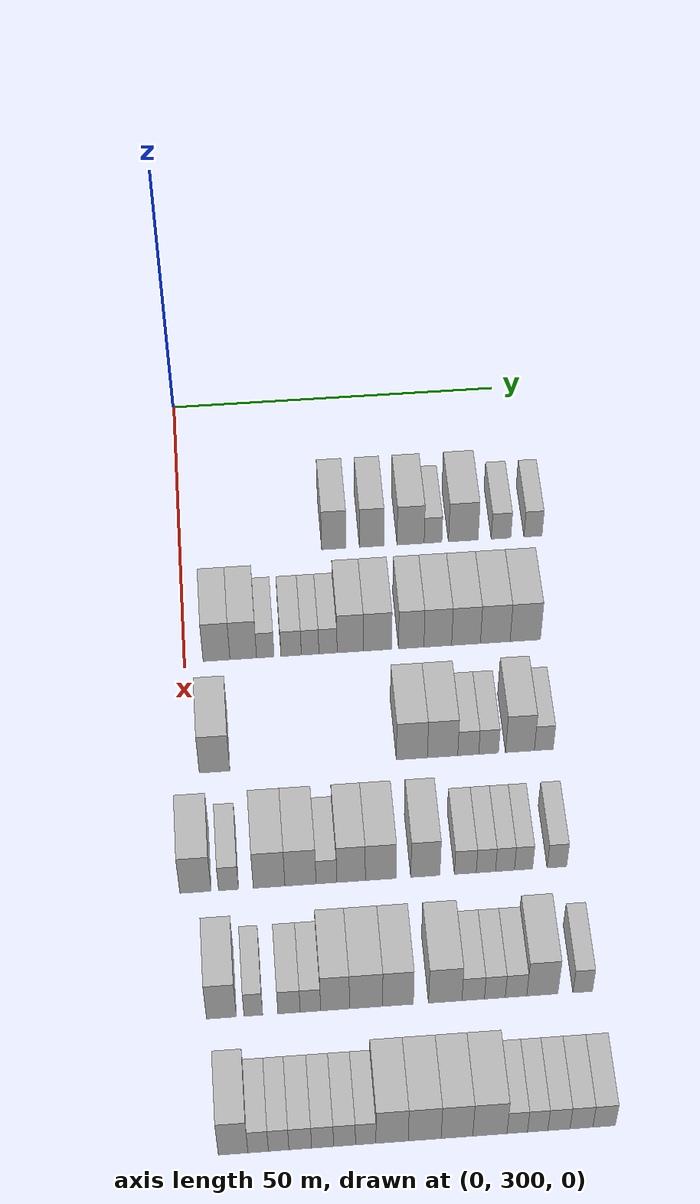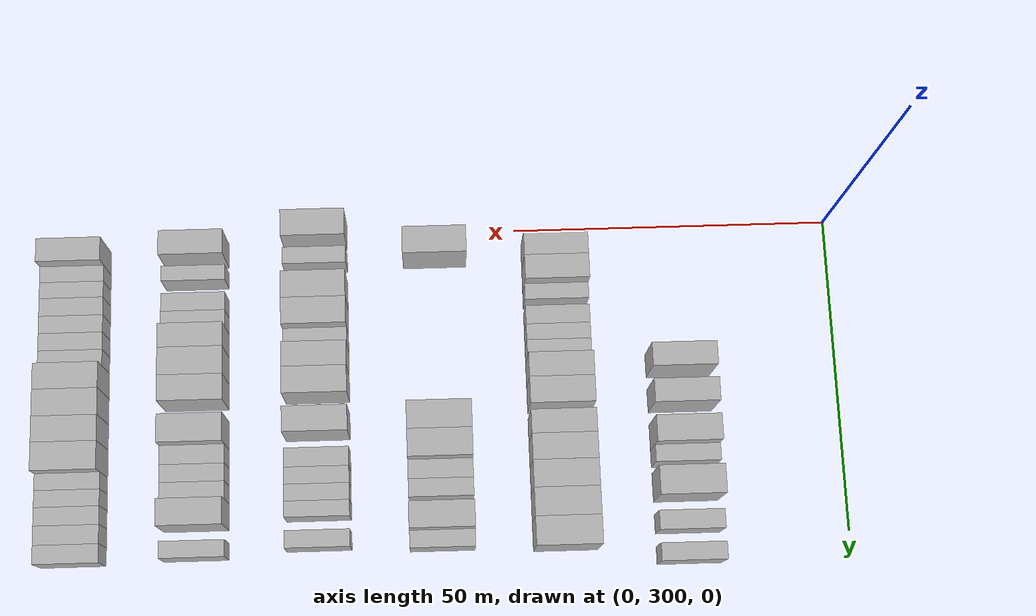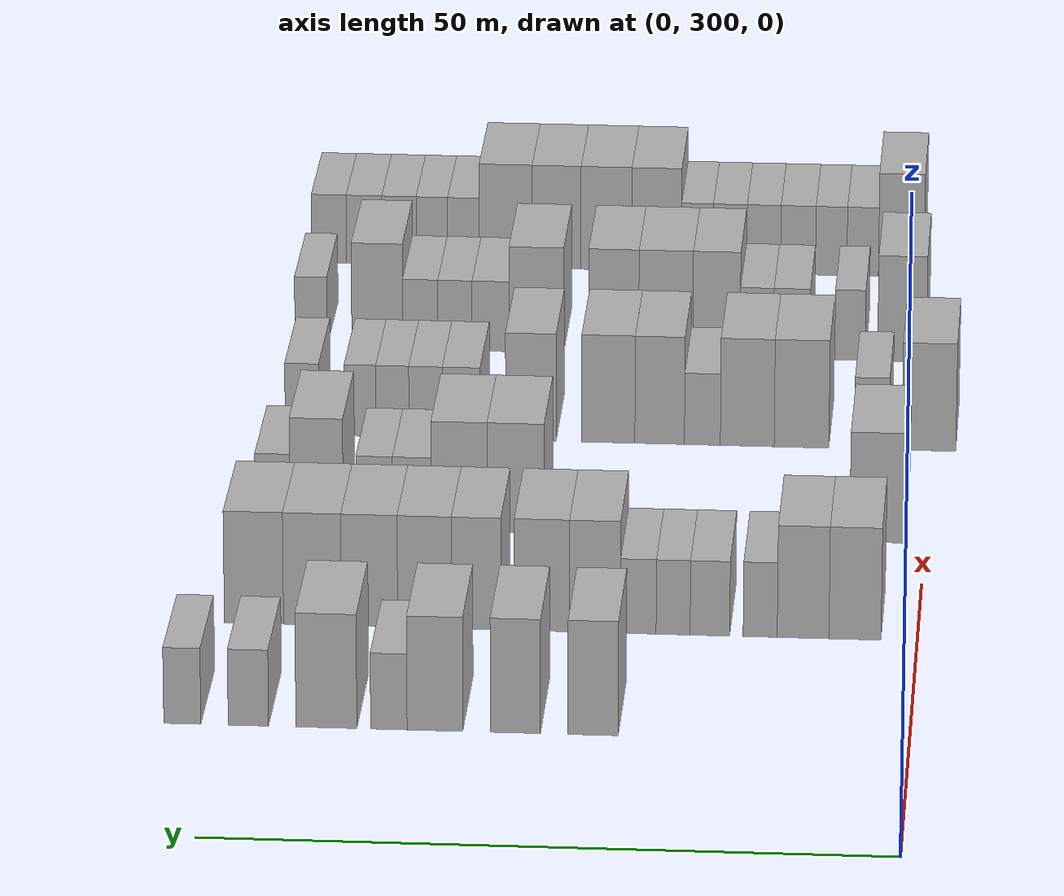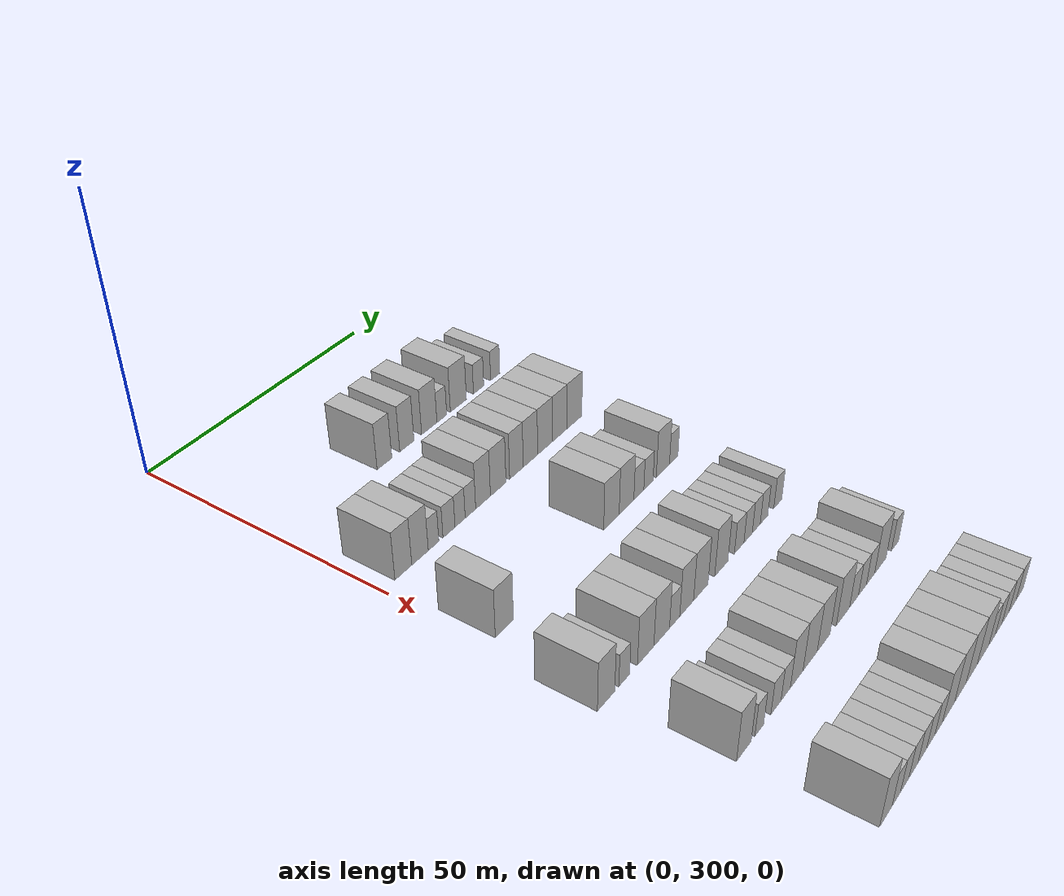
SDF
<sdf version="1.6">
 <world name="default">
  <model name="building_166">
   <static>1</static>
   <pose>25.0000 323.0089 0 0.000000 0.000000 0.000000</pose>
   <link name="link">
    <pose>0 0 4.50 0 0 0</pose>
    <collision name="collision"><geometry><box><size>10.0000 3.6612 9.0000</size></box></geometry></collision>
    <visual name="visual">
     <cast_shadows>0</cast_shadows>
     <geometry><box><size>10.0000 3.6612 9.0000</size></box></geometry>
     <material>
      <script>
       <uri>model://HANNAS_wall/materials/scripts</uri>
       <uri>model://HANNAS_wall/materials/textures</uri>
       <name>vrc/HANNAS_wall</name>
      </script>
     </material>
    </visual>
   </link>
  </model>
  <model name="building_167">
   <static>1</static>
   <pose>25.0000 328.6678 0 0.000000 0.000000 0.000000</pose>
   <link name="link">
    <pose>0 0 4.50 0 0 0</pose>
    <collision name="collision"><geometry><box><size>10.0000 3.6567 9.0000</size></box></geometry></collision>
    <visual name="visual">
     <cast_shadows>0</cast_shadows>
     <geometry><box><size>10.0000 3.6567 9.0000</size></box></geometry>
     <material>
      <script>
       <uri>model://HANNAS_wall/materials/scripts</uri>
       <uri>model://HANNAS_wall/materials/textures</uri>
       <name>vrc/HANNAS_wall</name>
      </script>
     </material>
    </visual>
   </link>
  </model>
  <model name="building_168">
   <static>1</static>
   <pose>25.0000 334.5279 0 0.000000 0.000000 0.000000</pose>
   <link name="link">
    <pose>0 0 4.50 0 0 0</pose>
    <collision name="collision"><geometry><box><size>10.0000 4.0635 9.0000</size></box></geometry></collision>
    <visual name="visual">
     <cast_shadows>0</cast_shadows>
     <geometry><box><size>10.0000 4.0635 9.0000</size></box></geometry>
     <material>
      <script>
       <uri>model://HANNAS_wall/materials/scripts</uri>
       <uri>model://HANNAS_wall/materials/textures</uri>
       <name>vrc/HANNAS_wall</name>
      </script>
     </material>
    </visual>
   </link>
  </model>
  <model name="building_169">
   <static>1</static>
   <pose>25.0000 337.8894 0 0.000000 0.000000 0.000000</pose>
   <link name="link">
    <pose>0 0 3.00 0 0 0</pose>
    <collision name="collision"><geometry><box><size>10.0000 2.6595 6.0000</size></box></geometry></collision>
    <visual name="visual">
     <cast_shadows>0</cast_shadows>
     <geometry><box><size>10.0000 2.6595 6.0000</size></box></geometry>
     <material>
      <script>
       <uri>model://HANNAS_wall/materials/scripts</uri>
       <uri>model://HANNAS_wall/materials/textures</uri>
       <name>vrc/HANNAS_wall</name>
      </script>
     </material>
    </visual>
   </link>
  </model>
  <model name="building_170">
   <static>1</static>
   <pose>25.0000 342.4454 0 0.000000 0.000000 0.000000</pose>
   <link name="link">
    <pose>0 0 4.50 0 0 0</pose>
    <collision name="collision"><geometry><box><size>10.0000 4.4525 9.0000</size></box></geometry></collision>
    <visual name="visual">
     <cast_shadows>0</cast_shadows>
     <geometry><box><size>10.0000 4.4525 9.0000</size></box></geometry>
     <material>
      <script>
       <uri>model://HANNAS_wall/materials/scripts</uri>
       <uri>model://HANNAS_wall/materials/textures</uri>
       <name>vrc/HANNAS_wall</name>
      </script>
     </material>
    </visual>
   </link>
  </model>
  <model name="building_171">
   <static>1</static>
   <pose>25.0000 348.1455 0 0.000000 0.000000 0.000000</pose>
   <link name="link">
    <pose>0 0 3.00 0 0 0</pose>
    <collision name="collision"><geometry><box><size>10.0000 2.9476 6.0000</size></box></geometry></collision>
    <visual name="visual">
     <cast_shadows>0</cast_shadows>
     <geometry><box><size>10.0000 2.9476 6.0000</size></box></geometry>
     <material>
      <script>
       <uri>model://HANNAS_wall/materials/scripts</uri>
       <uri>model://HANNAS_wall/materials/textures</uri>
       <name>vrc/HANNAS_wall</name>
      </script>
     </material>
    </visual>
   </link>
  </model>
  <model name="building_172">
   <static>1</static>
   <pose>25.0000 352.9757 0 0.000000 0.000000 0.000000</pose>
   <link name="link">
    <pose>0 0 3.00 0 0 0</pose>
    <collision name="collision"><geometry><box><size>10.0000 2.7128 6.0000</size></box></geometry></collision>
    <visual name="visual">
     <cast_shadows>0</cast_shadows>
     <geometry><box><size>10.0000 2.7128 6.0000</size></box></geometry>
     <material>
      <script>
       <uri>model://HANNAS_wall/materials/scripts</uri>
       <uri>model://HANNAS_wall/materials/textures</uri>
       <name>vrc/HANNAS_wall</name>
      </script>
     </material>
    </visual>
   </link>
  </model>
  <model name="building_335">
   <static>1</static>
   <pose>44.0000 304.6776 0 0.000000 0.000000 0.000000</pose>
   <link name="link">
    <pose>0 0 4.50 0 0 0</pose>
    <collision name="collision"><geometry><box><size>10.0000 3.8738 9.0000</size></box></geometry></collision>
    <visual name="visual">
     <cast_shadows>0</cast_shadows>
     <geometry><box><size>10.0000 3.8738 9.0000</size></box></geometry>
     <material>
      <script>
       <uri>model://HANNAS_wall/materials/scripts</uri>
       <uri>model://HANNAS_wall/materials/textures</uri>
       <name>vrc/HANNAS_wall</name>
      </script>
     </material>
    </visual>
   </link>
  </model>
  <model name="building_336">
   <static>1</static>
   <pose>44.0000 308.5405 0 0.000000 0.000000 0.000000</pose>
   <link name="link">
    <pose>0 0 4.50 0 0 0</pose>
    <collision name="collision"><geometry><box><size>10.0000 3.8520 9.0000</size></box></geometry></collision>
    <visual name="visual">
     <cast_shadows>0</cast_shadows>
     <geometry><box><size>10.0000 3.8520 9.0000</size></box></geometry>
     <material>
      <script>
       <uri>model://HANNAS_wall/materials/scripts</uri>
       <uri>model://HANNAS_wall/materials/textures</uri>
       <name>vrc/HANNAS_wall</name>
      </script>
     </material>
    </visual>
   </link>
  </model>
  <model name="building_337">
   <static>1</static>
   <pose>44.0000 311.7348 0 0.000000 0.000000 0.000000</pose>
   <link name="link">
    <pose>0 0 3.00 0 0 0</pose>
    <collision name="collision"><geometry><box><size>10.0000 2.5368 6.0000</size></box></geometry></collision>
    <visual name="visual">
     <cast_shadows>0</cast_shadows>
     <geometry><box><size>10.0000 2.5368 6.0000</size></box></geometry>
     <material>
      <script>
       <uri>model://HANNAS_wall/materials/scripts</uri>
       <uri>model://HANNAS_wall/materials/textures</uri>
       <name>vrc/HANNAS_wall</name>
      </script>
     </material>
    </visual>
   </link>
  </model>
  <model name="building_338">
   <static>1</static>
   <pose>44.0000 315.4791 0 0.000000 0.000000 0.000000</pose>
   <link name="link">
    <pose>0 0 3.00 0 0 0</pose>
    <collision name="collision"><geometry><box><size>10.0000 2.9518 6.0000</size></box></geometry></collision>
    <visual name="visual">
     <cast_shadows>0</cast_shadows>
     <geometry><box><size>10.0000 2.9518 6.0000</size></box></geometry>
     <material>
      <script>
       <uri>model://HANNAS_wall/materials/scripts</uri>
       <uri>model://HANNAS_wall/materials/textures</uri>
       <name>vrc/HANNAS_wall</name>
      </script>
     </material>
    </visual>
   </link>
  </model>
  <model name="building_339">
   <static>1</static>
   <pose>44.0000 318.2250 0 0.000000 0.000000 0.000000</pose>
   <link name="link">
    <pose>0 0 3.00 0 0 0</pose>
    <collision name="collision"><geometry><box><size>10.0000 2.5399 6.0000</size></box></geometry></collision>
    <visual name="visual">
     <cast_shadows>0</cast_shadows>
     <geometry><box><size>10.0000 2.5399 6.0000</size></box></geometry>
     <material>
      <script>
       <uri>model://HANNAS_wall/materials/scripts</uri>
       <uri>model://HANNAS_wall/materials/textures</uri>
       <name>vrc/HANNAS_wall</name>
      </script>
     </material>
    </visual>
   </link>
  </model>
  <model name="building_340">
   <static>1</static>
   <pose>44.0000 320.8242 0 0.000000 0.000000 0.000000</pose>
   <link name="link">
    <pose>0 0 3.00 0 0 0</pose>
    <collision name="collision"><geometry><box><size>10.0000 2.6586 6.0000</size></box></geometry></collision>
    <visual name="visual">
     <cast_shadows>0</cast_shadows>
     <geometry><box><size>10.0000 2.6586 6.0000</size></box></geometry>
     <material>
      <script>
       <uri>model://HANNAS_wall/materials/scripts</uri>
       <uri>model://HANNAS_wall/materials/textures</uri>
       <name>vrc/HANNAS_wall</name>
      </script>
     </material>
    </visual>
   </link>
  </model>
  <model name="building_341">
   <static>1</static>
   <pose>44.0000 324.0611 0 0.000000 0.000000 0.000000</pose>
   <link name="link">
    <pose>0 0 4.50 0 0 0</pose>
    <collision name="collision"><geometry><box><size>10.0000 3.8152 9.0000</size></box></geometry></collision>
    <visual name="visual">
     <cast_shadows>0</cast_shadows>
     <geometry><box><size>10.0000 3.8152 9.0000</size></box></geometry>
     <material>
      <script>
       <uri>model://HANNAS_wall/materials/scripts</uri>
       <uri>model://HANNAS_wall/materials/textures</uri>
       <name>vrc/HANNAS_wall</name>
      </script>
     </material>
    </visual>
   </link>
  </model>
  <model name="building_342">
   <static>1</static>
   <pose>44.0000 328.0256 0 0.000000 0.000000 0.000000</pose>
   <link name="link">
    <pose>0 0 4.50 0 0 0</pose>
    <collision name="collision"><geometry><box><size>10.0000 4.1137 9.0000</size></box></geometry></collision>
    <visual name="visual">
     <cast_shadows>0</cast_shadows>
     <geometry><box><size>10.0000 4.1137 9.0000</size></box></geometry>
     <material>
      <script>
       <uri>model://HANNAS_wall/materials/scripts</uri>
       <uri>model://HANNAS_wall/materials/textures</uri>
       <name>vrc/HANNAS_wall</name>
      </script>
     </material>
    </visual>
   </link>
  </model>
  <model name="building_343">
   <static>1</static>
   <pose>44.0000 332.9286 0 0.000000 0.000000 0.000000</pose>
   <link name="link">
    <pose>0 0 4.50 0 0 0</pose>
    <collision name="collision"><geometry><box><size>10.0000 3.6924 9.0000</size></box></geometry></collision>
    <visual name="visual">
     <cast_shadows>0</cast_shadows>
     <geometry><box><size>10.0000 3.6924 9.0000</size></box></geometry>
     <material>
      <script>
       <uri>model://HANNAS_wall/materials/scripts</uri>
       <uri>model://HANNAS_wall/materials/textures</uri>
       <name>vrc/HANNAS_wall</name>
      </script>
     </material>
    </visual>
   </link>
  </model>
  <model name="building_344">
   <static>1</static>
   <pose>44.0000 336.7940 0 0.000000 0.000000 0.000000</pose>
   <link name="link">
    <pose>0 0 4.50 0 0 0</pose>
    <collision name="collision"><geometry><box><size>10.0000 4.0385 9.0000</size></box></geometry></collision>
    <visual name="visual">
     <cast_shadows>0</cast_shadows>
     <geometry><box><size>10.0000 4.0385 9.0000</size></box></geometry>
     <material>
      <script>
       <uri>model://HANNAS_wall/materials/scripts</uri>
       <uri>model://HANNAS_wall/materials/textures</uri>
       <name>vrc/HANNAS_wall</name>
      </script>
     </material>
    </visual>
   </link>
  </model>
  <model name="building_345">
   <static>1</static>
   <pose>44.0000 340.9139 0 0.000000 0.000000 0.000000</pose>
   <link name="link">
    <pose>0 0 4.50 0 0 0</pose>
    <collision name="collision"><geometry><box><size>10.0000 4.2012 9.0000</size></box></geometry></collision>
    <visual name="visual">
     <cast_shadows>0</cast_shadows>
     <geometry><box><size>10.0000 4.2012 9.0000</size></box></geometry>
     <material>
      <script>
       <uri>model://HANNAS_wall/materials/scripts</uri>
       <uri>model://HANNAS_wall/materials/textures</uri>
       <name>vrc/HANNAS_wall</name>
      </script>
     </material>
    </visual>
   </link>
  </model>
  <model name="building_346">
   <static>1</static>
   <pose>44.0000 345.1844 0 0.000000 0.000000 0.000000</pose>
   <link name="link">
    <pose>0 0 4.50 0 0 0</pose>
    <collision name="collision"><geometry><box><size>10.0000 4.3399 9.0000</size></box></geometry></collision>
    <visual name="visual">
     <cast_shadows>0</cast_shadows>
     <geometry><box><size>10.0000 4.3399 9.0000</size></box></geometry>
     <material>
      <script>
       <uri>model://HANNAS_wall/materials/scripts</uri>
       <uri>model://HANNAS_wall/materials/textures</uri>
       <name>vrc/HANNAS_wall</name>
      </script>
     </material>
    </visual>
   </link>
  </model>
  <model name="building_347">
   <static>1</static>
   <pose>44.0000 349.5711 0 0.000000 0.000000 0.000000</pose>
   <link name="link">
    <pose>0 0 4.50 0 0 0</pose>
    <collision name="collision"><geometry><box><size>10.0000 4.4335 9.0000</size></box></geometry></collision>
    <visual name="visual">
     <cast_shadows>0</cast_shadows>
     <geometry><box><size>10.0000 4.4335 9.0000</size></box></geometry>
     <material>
      <script>
       <uri>model://HANNAS_wall/materials/scripts</uri>
       <uri>model://HANNAS_wall/materials/textures</uri>
       <name>vrc/HANNAS_wall</name>
      </script>
     </material>
    </visual>
   </link>
  </model>
  <model name="building_506">
   <static>1</static>
   <pose>63.0000 303.6293 0 0.000000 0.000000 0.000000</pose>
   <link name="link">
    <pose>0 0 4.50 0 0 0</pose>
    <collision name="collision"><geometry><box><size>10.0000 4.2753 9.0000</size></box></geometry></collision>
    <visual name="visual">
     <cast_shadows>0</cast_shadows>
     <geometry><box><size>10.0000 4.2753 9.0000</size></box></geometry>
     <material>
      <script>
       <uri>model://HANNAS_wall/materials/scripts</uri>
       <uri>model://HANNAS_wall/materials/textures</uri>
       <name>vrc/HANNAS_wall</name>
      </script>
     </material>
    </visual>
   </link>
  </model>
  <model name="building_507">
   <static>1</static>
   <pose>63.0000 331.3214 0 0.000000 0.000000 0.000000</pose>
   <link name="link">
    <pose>0 0 4.50 0 0 0</pose>
    <collision name="collision"><geometry><box><size>10.0000 4.3696 9.0000</size></box></geometry></collision>
    <visual name="visual">
     <cast_shadows>0</cast_shadows>
     <geometry><box><size>10.0000 4.3696 9.0000</size></box></geometry>
     <material>
      <script>
       <uri>model://HANNAS_wall/materials/scripts</uri>
       <uri>model://HANNAS_wall/materials/textures</uri>
       <name>vrc/HANNAS_wall</name>
      </script>
     </material>
    </visual>
   </link>
  </model>
  <model name="building_508">
   <static>1</static>
   <pose>63.0000 335.6456 0 0.000000 0.000000 0.000000</pose>
   <link name="link">
    <pose>0 0 4.50 0 0 0</pose>
    <collision name="collision"><geometry><box><size>10.0000 4.2788 9.0000</size></box></geometry></collision>
    <visual name="visual">
     <cast_shadows>0</cast_shadows>
     <geometry><box><size>10.0000 4.2788 9.0000</size></box></geometry>
     <material>
      <script>
       <uri>model://HANNAS_wall/materials/scripts</uri>
       <uri>model://HANNAS_wall/materials/textures</uri>
       <name>vrc/HANNAS_wall</name>
      </script>
     </material>
    </visual>
   </link>
  </model>
  <model name="building_509">
   <static>1</static>
   <pose>63.0000 339.2662 0 0.000000 0.000000 0.000000</pose>
   <link name="link">
    <pose>0 0 3.00 0 0 0</pose>
    <collision name="collision"><geometry><box><size>10.0000 2.9624 6.0000</size></box></geometry></collision>
    <visual name="visual">
     <cast_shadows>0</cast_shadows>
     <geometry><box><size>10.0000 2.9624 6.0000</size></box></geometry>
     <material>
      <script>
       <uri>model://HANNAS_wall/materials/scripts</uri>
       <uri>model://HANNAS_wall/materials/textures</uri>
       <name>vrc/HANNAS_wall</name>
      </script>
     </material>
    </visual>
   </link>
  </model>
  <model name="building_510">
   <static>1</static>
   <pose>63.0000 342.1454 0 0.000000 0.000000 0.000000</pose>
   <link name="link">
    <pose>0 0 3.00 0 0 0</pose>
    <collision name="collision"><geometry><box><size>10.0000 2.7959 6.0000</size></box></geometry></collision>
    <visual name="visual">
     <cast_shadows>0</cast_shadows>
     <geometry><box><size>10.0000 2.7959 6.0000</size></box></geometry>
     <material>
      <script>
       <uri>model://HANNAS_wall/materials/scripts</uri>
       <uri>model://HANNAS_wall/materials/textures</uri>
       <name>vrc/HANNAS_wall</name>
      </script>
     </material>
    </visual>
   </link>
  </model>
  <model name="building_511">
   <static>1</static>
   <pose>63.0000 346.5852 0 0.000000 0.000000 0.000000</pose>
   <link name="link">
    <pose>0 0 4.50 0 0 0</pose>
    <collision name="collision"><geometry><box><size>10.0000 4.0839 9.0000</size></box></geometry></collision>
    <visual name="visual">
     <cast_shadows>0</cast_shadows>
     <geometry><box><size>10.0000 4.0839 9.0000</size></box></geometry>
     <material>
      <script>
       <uri>model://HANNAS_wall/materials/scripts</uri>
       <uri>model://HANNAS_wall/materials/textures</uri>
       <name>vrc/HANNAS_wall</name>
      </script>
     </material>
    </visual>
   </link>
  </model>
  <model name="building_512">
   <static>1</static>
   <pose>63.0000 349.9606 0 0.000000 0.000000 0.000000</pose>
   <link name="link">
    <pose>0 0 3.00 0 0 0</pose>
    <collision name="collision"><geometry><box><size>10.0000 2.6670 6.0000</size></box></geometry></collision>
    <visual name="visual">
     <cast_shadows>0</cast_shadows>
     <geometry><box><size>10.0000 2.6670 6.0000</size></box></geometry>
     <material>
      <script>
       <uri>model://HANNAS_wall/materials/scripts</uri>
       <uri>model://HANNAS_wall/materials/textures</uri>
       <name>vrc/HANNAS_wall</name>
      </script>
     </material>
    </visual>
   </link>
  </model>
  <model name="building_675">
   <static>1</static>
   <pose>82.0000 300.2827 0 0.000000 0.000000 0.000000</pose>
   <link name="link">
    <pose>0 0 4.50 0 0 0</pose>
    <collision name="collision"><geometry><box><size>10.0000 4.2260 9.0000</size></box></geometry></collision>
    <visual name="visual">
     <cast_shadows>0</cast_shadows>
     <geometry><box><size>10.0000 4.2260 9.0000</size></box></geometry>
     <material>
      <script>
       <uri>model://HANNAS_wall/materials/scripts</uri>
       <uri>model://HANNAS_wall/materials/textures</uri>
       <name>vrc/HANNAS_wall</name>
      </script>
     </material>
    </visual>
   </link>
  </model>
  <model name="building_676">
   <static>1</static>
   <pose>82.0000 304.7451 0 0.000000 0.000000 0.000000</pose>
   <link name="link">
    <pose>0 0 3.00 0 0 0</pose>
    <collision name="collision"><geometry><box><size>10.0000 2.6988 6.0000</size></box></geometry></collision>
    <visual name="visual">
     <cast_shadows>0</cast_shadows>
     <geometry><box><size>10.0000 2.6988 6.0000</size></box></geometry>
     <material>
      <script>
       <uri>model://HANNAS_wall/materials/scripts</uri>
       <uri>model://HANNAS_wall/materials/textures</uri>
       <name>vrc/HANNAS_wall</name>
      </script>
     </material>
    </visual>
   </link>
  </model>
  <model name="building_677">
   <static>1</static>
   <pose>82.0000 310.2359 0 0.000000 0.000000 0.000000</pose>
   <link name="link">
    <pose>0 0 4.50 0 0 0</pose>
    <collision name="collision"><geometry><box><size>10.0000 4.2827 9.0000</size></box></geometry></collision>
    <visual name="visual">
     <cast_shadows>0</cast_shadows>
     <geometry><box><size>10.0000 4.2827 9.0000</size></box></geometry>
     <material>
      <script>
       <uri>model://HANNAS_wall/materials/scripts</uri>
       <uri>model://HANNAS_wall/materials/textures</uri>
       <name>vrc/HANNAS_wall</name>
      </script>
     </material>
    </visual>
   </link>
  </model>
  <model name="building_678">
   <static>1</static>
   <pose>82.0000 314.4845 0 0.000000 0.000000 0.000000</pose>
   <link name="link">
    <pose>0 0 4.50 0 0 0</pose>
    <collision name="collision"><geometry><box><size>10.0000 4.2144 9.0000</size></box></geometry></collision>
    <visual name="visual">
     <cast_shadows>0</cast_shadows>
     <geometry><box><size>10.0000 4.2144 9.0000</size></box></geometry>
     <material>
      <script>
       <uri>model://HANNAS_wall/materials/scripts</uri>
       <uri>model://HANNAS_wall/materials/textures</uri>
       <name>vrc/HANNAS_wall</name>
      </script>
     </material>
    </visual>
   </link>
  </model>
  <model name="building_679">
   <static>1</static>
   <pose>82.0000 317.9982 0 0.000000 0.000000 0.000000</pose>
   <link name="link">
    <pose>0 0 3.00 0 0 0</pose>
    <collision name="collision"><geometry><box><size>10.0000 2.8130 6.0000</size></box></geometry></collision>
    <visual name="visual">
     <cast_shadows>0</cast_shadows>
     <geometry><box><size>10.0000 2.8130 6.0000</size></box></geometry>
     <material>
      <script>
       <uri>model://HANNAS_wall/materials/scripts</uri>
       <uri>model://HANNAS_wall/materials/textures</uri>
       <name>vrc/HANNAS_wall</name>
      </script>
     </material>
    </visual>
   </link>
  </model>
  <model name="building_680">
   <static>1</static>
   <pose>82.0000 321.3482 0 0.000000 0.000000 0.000000</pose>
   <link name="link">
    <pose>0 0 4.50 0 0 0</pose>
    <collision name="collision"><geometry><box><size>10.0000 3.8871 9.0000</size></box></geometry></collision>
    <visual name="visual">
     <cast_shadows>0</cast_shadows>
     <geometry><box><size>10.0000 3.8871 9.0000</size></box></geometry>
     <material>
      <script>
       <uri>model://HANNAS_wall/materials/scripts</uri>
       <uri>model://HANNAS_wall/materials/textures</uri>
       <name>vrc/HANNAS_wall</name>
      </script>
     </material>
    </visual>
   </link>
  </model>
  <model name="building_681">
   <static>1</static>
   <pose>82.0000 325.3834 0 0.000000 0.000000 0.000000</pose>
   <link name="link">
    <pose>0 0 4.50 0 0 0</pose>
    <collision name="collision"><geometry><box><size>10.0000 4.1832 9.0000</size></box></geometry></collision>
    <visual name="visual">
     <cast_shadows>0</cast_shadows>
     <geometry><box><size>10.0000 4.1832 9.0000</size></box></geometry>
     <material>
      <script>
       <uri>model://HANNAS_wall/materials/scripts</uri>
       <uri>model://HANNAS_wall/materials/textures</uri>
       <name>vrc/HANNAS_wall</name>
      </script>
     </material>
    </visual>
   </link>
  </model>
  <model name="building_682">
   <static>1</static>
   <pose>82.0000 331.4577 0 0.000000 0.000000 0.000000</pose>
   <link name="link">
    <pose>0 0 4.50 0 0 0</pose>
    <collision name="collision"><geometry><box><size>10.0000 3.9654 9.0000</size></box></geometry></collision>
    <visual name="visual">
     <cast_shadows>0</cast_shadows>
     <geometry><box><size>10.0000 3.9654 9.0000</size></box></geometry>
     <material>
      <script>
       <uri>model://HANNAS_wall/materials/scripts</uri>
       <uri>model://HANNAS_wall/materials/textures</uri>
       <name>vrc/HANNAS_wall</name>
      </script>
     </material>
    </visual>
   </link>
  </model>
  <model name="building_683">
   <static>1</static>
   <pose>82.0000 336.9232 0 0.000000 0.000000 0.000000</pose>
   <link name="link">
    <pose>0 0 3.00 0 0 0</pose>
    <collision name="collision"><geometry><box><size>10.0000 2.9657 6.0000</size></box></geometry></collision>
    <visual name="visual">
     <cast_shadows>0</cast_shadows>
     <geometry><box><size>10.0000 2.9657 6.0000</size></box></geometry>
     <material>
      <script>
       <uri>model://HANNAS_wall/materials/scripts</uri>
       <uri>model://HANNAS_wall/materials/textures</uri>
       <name>vrc/HANNAS_wall</name>
      </script>
     </material>
    </visual>
   </link>
  </model>
  <model name="building_684">
   <static>1</static>
   <pose>82.0000 339.7233 0 0.000000 0.000000 0.000000</pose>
   <link name="link">
    <pose>0 0 3.00 0 0 0</pose>
    <collision name="collision"><geometry><box><size>10.0000 2.6345 6.0000</size></box></geometry></collision>
    <visual name="visual">
     <cast_shadows>0</cast_shadows>
     <geometry><box><size>10.0000 2.6345 6.0000</size></box></geometry>
     <material>
      <script>
       <uri>model://HANNAS_wall/materials/scripts</uri>
       <uri>model://HANNAS_wall/materials/textures</uri>
       <name>vrc/HANNAS_wall</name>
      </script>
     </material>
    </visual>
   </link>
  </model>
  <model name="building_685">
   <static>1</static>
   <pose>82.0000 342.3336 0 0.000000 0.000000 0.000000</pose>
   <link name="link">
    <pose>0 0 3.00 0 0 0</pose>
    <collision name="collision"><geometry><box><size>10.0000 2.5863 6.0000</size></box></geometry></collision>
    <visual name="visual">
     <cast_shadows>0</cast_shadows>
     <geometry><box><size>10.0000 2.5863 6.0000</size></box></geometry>
     <material>
      <script>
       <uri>model://HANNAS_wall/materials/scripts</uri>
       <uri>model://HANNAS_wall/materials/textures</uri>
       <name>vrc/HANNAS_wall</name>
      </script>
     </material>
    </visual>
   </link>
  </model>
  <model name="building_686">
   <static>1</static>
   <pose>82.0000 344.8656 0 0.000000 0.000000 0.000000</pose>
   <link name="link">
    <pose>0 0 3.00 0 0 0</pose>
    <collision name="collision"><geometry><box><size>10.0000 2.4777 6.0000</size></box></geometry></collision>
    <visual name="visual">
     <cast_shadows>0</cast_shadows>
     <geometry><box><size>10.0000 2.4777 6.0000</size></box></geometry>
     <material>
      <script>
       <uri>model://HANNAS_wall/materials/scripts</uri>
       <uri>model://HANNAS_wall/materials/textures</uri>
       <name>vrc/HANNAS_wall</name>
      </script>
     </material>
    </visual>
   </link>
  </model>
  <model name="building_687">
   <static>1</static>
   <pose>82.0000 349.4400 0 0.000000 0.000000 0.000000</pose>
   <link name="link">
    <pose>0 0 3.00 0 0 0</pose>
    <collision name="collision"><geometry><box><size>10.0000 2.6711 6.0000</size></box></geometry></collision>
    <visual name="visual">
     <cast_shadows>0</cast_shadows>
     <geometry><box><size>10.0000 2.6711 6.0000</size></box></geometry>
     <material>
      <script>
       <uri>model://HANNAS_wall/materials/scripts</uri>
       <uri>model://HANNAS_wall/materials/textures</uri>
       <name>vrc/HANNAS_wall</name>
      </script>
     </material>
    </visual>
   </link>
  </model>
  <model name="building_856">
   <static>1</static>
   <pose>101.0000 302.9865 0 0.000000 0.000000 0.000000</pose>
   <link name="link">
    <pose>0 0 4.50 0 0 0</pose>
    <collision name="collision"><geometry><box><size>10.0000 3.8971 9.0000</size></box></geometry></collision>
    <visual name="visual">
     <cast_shadows>0</cast_shadows>
     <geometry><box><size>10.0000 3.8971 9.0000</size></box></geometry>
     <material>
      <script>
       <uri>model://HANNAS_wall/materials/scripts</uri>
       <uri>model://HANNAS_wall/materials/textures</uri>
       <name>vrc/HANNAS_wall</name>
      </script>
     </material>
    </visual>
   </link>
  </model>
  <model name="building_857">
   <static>1</static>
   <pose>101.0000 307.1493 0 0.000000 0.000000 0.000000</pose>
   <link name="link">
    <pose>0 0 3.00 0 0 0</pose>
    <collision name="collision"><geometry><box><size>10.0000 2.4286 6.0000</size></box></geometry></collision>
    <visual name="visual">
     <cast_shadows>0</cast_shadows>
     <geometry><box><size>10.0000 2.4286 6.0000</size></box></geometry>
     <material>
      <script>
       <uri>model://HANNAS_wall/materials/scripts</uri>
       <uri>model://HANNAS_wall/materials/textures</uri>
       <name>vrc/HANNAS_wall</name>
      </script>
     </material>
    </visual>
   </link>
  </model>
  <model name="building_858">
   <static>1</static>
   <pose>101.0000 311.8184 0 0.000000 0.000000 0.000000</pose>
   <link name="link">
    <pose>0 0 3.00 0 0 0</pose>
    <collision name="collision"><geometry><box><size>10.0000 2.9095 6.0000</size></box></geometry></collision>
    <visual name="visual">
     <cast_shadows>0</cast_shadows>
     <geometry><box><size>10.0000 2.9095 6.0000</size></box></geometry>
     <material>
      <script>
       <uri>model://HANNAS_wall/materials/scripts</uri>
       <uri>model://HANNAS_wall/materials/textures</uri>
       <name>vrc/HANNAS_wall</name>
      </script>
     </material>
    </visual>
   </link>
  </model>
  <model name="building_859">
   <static>1</static>
   <pose>101.0000 314.6146 0 0.000000 0.000000 0.000000</pose>
   <link name="link">
    <pose>0 0 3.00 0 0 0</pose>
    <collision name="collision"><geometry><box><size>10.0000 2.6829 6.0000</size></box></geometry></collision>
    <visual name="visual">
     <cast_shadows>0</cast_shadows>
     <geometry><box><size>10.0000 2.6829 6.0000</size></box></geometry>
     <material>
      <script>
       <uri>model://HANNAS_wall/materials/scripts</uri>
       <uri>model://HANNAS_wall/materials/textures</uri>
       <name>vrc/HANNAS_wall</name>
      </script>
     </material>
    </visual>
   </link>
  </model>
  <model name="building_860">
   <static>1</static>
   <pose>101.0000 317.8494 0 0.000000 0.000000 0.000000</pose>
   <link name="link">
    <pose>0 0 4.50 0 0 0</pose>
    <collision name="collision"><geometry><box><size>10.0000 3.7868 9.0000</size></box></geometry></collision>
    <visual name="visual">
     <cast_shadows>0</cast_shadows>
     <geometry><box><size>10.0000 3.7868 9.0000</size></box></geometry>
     <material>
      <script>
       <uri>model://HANNAS_wall/materials/scripts</uri>
       <uri>model://HANNAS_wall/materials/textures</uri>
       <name>vrc/HANNAS_wall</name>
      </script>
     </material>
    </visual>
   </link>
  </model>
  <model name="building_861">
   <static>1</static>
   <pose>101.0000 321.9171 0 0.000000 0.000000 0.000000</pose>
   <link name="link">
    <pose>0 0 4.50 0 0 0</pose>
    <collision name="collision"><geometry><box><size>10.0000 4.3487 9.0000</size></box></geometry></collision>
    <visual name="visual">
     <cast_shadows>0</cast_shadows>
     <geometry><box><size>10.0000 4.3487 9.0000</size></box></geometry>
     <material>
      <script>
       <uri>model://HANNAS_wall/materials/scripts</uri>
       <uri>model://HANNAS_wall/materials/textures</uri>
       <name>vrc/HANNAS_wall</name>
      </script>
     </material>
    </visual>
   </link>
  </model>
  <model name="building_862">
   <static>1</static>
   <pose>101.0000 326.1069 0 0.000000 0.000000 0.000000</pose>
   <link name="link">
    <pose>0 0 4.50 0 0 0</pose>
    <collision name="collision"><geometry><box><size>10.0000 4.0308 9.0000</size></box></geometry></collision>
    <visual name="visual">
     <cast_shadows>0</cast_shadows>
     <geometry><box><size>10.0000 4.0308 9.0000</size></box></geometry>
     <material>
      <script>
       <uri>model://HANNAS_wall/materials/scripts</uri>
       <uri>model://HANNAS_wall/materials/textures</uri>
       <name>vrc/HANNAS_wall</name>
      </script>
     </material>
    </visual>
   </link>
  </model>
  <model name="building_863">
   <static>1</static>
   <pose>101.0000 332.3214 0 0.000000 0.000000 0.000000</pose>
   <link name="link">
    <pose>0 0 4.50 0 0 0</pose>
    <collision name="collision"><geometry><box><size>10.0000 4.3982 9.0000</size></box></geometry></collision>
    <visual name="visual">
     <cast_shadows>0</cast_shadows>
     <geometry><box><size>10.0000 4.3982 9.0000</size></box></geometry>
     <material>
      <script>
       <uri>model://HANNAS_wall/materials/scripts</uri>
       <uri>model://HANNAS_wall/materials/textures</uri>
       <name>vrc/HANNAS_wall</name>
      </script>
     </material>
    </visual>
   </link>
  </model>
  <model name="building_864">
   <static>1</static>
   <pose>101.0000 336.0028 0 0.000000 0.000000 0.000000</pose>
   <link name="link">
    <pose>0 0 3.00 0 0 0</pose>
    <collision name="collision"><geometry><box><size>10.0000 2.9645 6.0000</size></box></geometry></collision>
    <visual name="visual">
     <cast_shadows>0</cast_shadows>
     <geometry><box><size>10.0000 2.9645 6.0000</size></box></geometry>
     <material>
      <script>
       <uri>model://HANNAS_wall/materials/scripts</uri>
       <uri>model://HANNAS_wall/materials/textures</uri>
       <name>vrc/HANNAS_wall</name>
      </script>
     </material>
    </visual>
   </link>
  </model>
  <model name="building_865">
   <static>1</static>
   <pose>101.0000 338.8601 0 0.000000 0.000000 0.000000</pose>
   <link name="link">
    <pose>0 0 3.00 0 0 0</pose>
    <collision name="collision"><geometry><box><size>10.0000 2.7500 6.0000</size></box></geometry></collision>
    <visual name="visual">
     <cast_shadows>0</cast_shadows>
     <geometry><box><size>10.0000 2.7500 6.0000</size></box></geometry>
     <material>
      <script>
       <uri>model://HANNAS_wall/materials/scripts</uri>
       <uri>model://HANNAS_wall/materials/textures</uri>
       <name>vrc/HANNAS_wall</name>
      </script>
     </material>
    </visual>
   </link>
  </model>
  <model name="building_866">
   <static>1</static>
   <pose>101.0000 341.6535 0 0.000000 0.000000 0.000000</pose>
   <link name="link">
    <pose>0 0 3.00 0 0 0</pose>
    <collision name="collision"><geometry><box><size>10.0000 2.8369 6.0000</size></box></geometry></collision>
    <visual name="visual">
     <cast_shadows>0</cast_shadows>
     <geometry><box><size>10.0000 2.8369 6.0000</size></box></geometry>
     <material>
      <script>
       <uri>model://HANNAS_wall/materials/scripts</uri>
       <uri>model://HANNAS_wall/materials/textures</uri>
       <name>vrc/HANNAS_wall</name>
      </script>
     </material>
    </visual>
   </link>
  </model>
  <model name="building_867">
   <static>1</static>
   <pose>101.0000 345.1260 0 0.000000 0.000000 0.000000</pose>
   <link name="link">
    <pose>0 0 4.50 0 0 0</pose>
    <collision name="collision"><geometry><box><size>10.0000 4.1080 9.0000</size></box></geometry></collision>
    <visual name="visual">
     <cast_shadows>0</cast_shadows>
     <geometry><box><size>10.0000 4.1080 9.0000</size></box></geometry>
     <material>
      <script>
       <uri>model://HANNAS_wall/materials/scripts</uri>
       <uri>model://HANNAS_wall/materials/textures</uri>
       <name>vrc/HANNAS_wall</name>
      </script>
     </material>
    </visual>
   </link>
  </model>
  <model name="building_868">
   <static>1</static>
   <pose>101.0000 350.4711 0 0.000000 0.000000 0.000000</pose>
   <link name="link">
    <pose>0 0 3.00 0 0 0</pose>
    <collision name="collision"><geometry><box><size>10.0000 2.5822 6.0000</size></box></geometry></collision>
    <visual name="visual">
     <cast_shadows>0</cast_shadows>
     <geometry><box><size>10.0000 2.5822 6.0000</size></box></geometry>
     <material>
      <script>
       <uri>model://HANNAS_wall/materials/scripts</uri>
       <uri>model://HANNAS_wall/materials/textures</uri>
       <name>vrc/HANNAS_wall</name>
      </script>
     </material>
    </visual>
   </link>
  </model>
  <model name="building_1033">
   <static>1</static>
   <pose>120.0000 303.6507 0 0.000000 0.000000 0.000000</pose>
   <link name="link">
    <pose>0 0 4.50 0 0 0</pose>
    <collision name="collision"><geometry><box><size>10.0000 3.7277 9.0000</size></box></geometry></collision>
    <visual name="visual">
     <cast_shadows>0</cast_shadows>
     <geometry><box><size>10.0000 3.7277 9.0000</size></box></geometry>
     <material>
      <script>
       <uri>model://HANNAS_wall/materials/scripts</uri>
       <uri>model://HANNAS_wall/materials/textures</uri>
       <name>vrc/HANNAS_wall</name>
      </script>
     </material>
    </visual>
   </link>
  </model>
  <model name="building_1034">
   <static>1</static>
   <pose>120.0000 306.8069 0 0.000000 0.000000 0.000000</pose>
   <link name="link">
    <pose>0 0 3.00 0 0 0</pose>
    <collision name="collision"><geometry><box><size>10.0000 2.5847 6.0000</size></box></geometry></collision>
    <visual name="visual">
     <cast_shadows>0</cast_shadows>
     <geometry><box><size>10.0000 2.5847 6.0000</size></box></geometry>
     <material>
      <script>
       <uri>model://HANNAS_wall/materials/scripts</uri>
       <uri>model://HANNAS_wall/materials/textures</uri>
       <name>vrc/HANNAS_wall</name>
      </script>
     </material>
    </visual>
   </link>
  </model>
  <model name="building_1035">
   <static>1</static>
   <pose>120.0000 309.3885 0 0.000000 0.000000 0.000000</pose>
   <link name="link">
    <pose>0 0 3.00 0 0 0</pose>
    <collision name="collision"><geometry><box><size>10.0000 2.5786 6.0000</size></box></geometry></collision>
    <visual name="visual">
     <cast_shadows>0</cast_shadows>
     <geometry><box><size>10.0000 2.5786 6.0000</size></box></geometry>
     <material>
      <script>
       <uri>model://HANNAS_wall/materials/scripts</uri>
       <uri>model://HANNAS_wall/materials/textures</uri>
       <name>vrc/HANNAS_wall</name>
      </script>
     </material>
    </visual>
   </link>
  </model>
  <model name="building_1036">
   <static>1</static>
   <pose>120.0000 312.1104 0 0.000000 0.000000 0.000000</pose>
   <link name="link">
    <pose>0 0 3.00 0 0 0</pose>
    <collision name="collision"><geometry><box><size>10.0000 2.8651 6.0000</size></box></geometry></collision>
    <visual name="visual">
     <cast_shadows>0</cast_shadows>
     <geometry><box><size>10.0000 2.8651 6.0000</size></box></geometry>
     <material>
      <script>
       <uri>model://HANNAS_wall/materials/scripts</uri>
       <uri>model://HANNAS_wall/materials/textures</uri>
       <name>vrc/HANNAS_wall</name>
      </script>
     </material>
    </visual>
   </link>
  </model>
  <model name="building_1037">
   <static>1</static>
   <pose>120.0000 314.9282 0 0.000000 0.000000 0.000000</pose>
   <link name="link">
    <pose>0 0 3.00 0 0 0</pose>
    <collision name="collision"><geometry><box><size>10.0000 2.7705 6.0000</size></box></geometry></collision>
    <visual name="visual">
     <cast_shadows>0</cast_shadows>
     <geometry><box><size>10.0000 2.7705 6.0000</size></box></geometry>
     <material>
      <script>
       <uri>model://HANNAS_wall/materials/scripts</uri>
       <uri>model://HANNAS_wall/materials/textures</uri>
       <name>vrc/HANNAS_wall</name>
      </script>
     </material>
    </visual>
   </link>
  </model>
  <model name="building_1038">
   <static>1</static>
   <pose>120.0000 317.6999 0 0.000000 0.000000 0.000000</pose>
   <link name="link">
    <pose>0 0 3.00 0 0 0</pose>
    <collision name="collision"><geometry><box><size>10.0000 2.7730 6.0000</size></box></geometry></collision>
    <visual name="visual">
     <cast_shadows>0</cast_shadows>
     <geometry><box><size>10.0000 2.7730 6.0000</size></box></geometry>
     <material>
      <script>
       <uri>model://HANNAS_wall/materials/scripts</uri>
       <uri>model://HANNAS_wall/materials/textures</uri>
       <name>vrc/HANNAS_wall</name>
      </script>
     </material>
    </visual>
   </link>
  </model>
  <model name="building_1039">
   <static>1</static>
   <pose>120.0000 320.3841 0 0.000000 0.000000 0.000000</pose>
   <link name="link">
    <pose>0 0 3.00 0 0 0</pose>
    <collision name="collision"><geometry><box><size>10.0000 2.5954 6.0000</size></box></geometry></collision>
    <visual name="visual">
     <cast_shadows>0</cast_shadows>
     <geometry><box><size>10.0000 2.5954 6.0000</size></box></geometry>
     <material>
      <script>
       <uri>model://HANNAS_wall/materials/scripts</uri>
       <uri>model://HANNAS_wall/materials/textures</uri>
       <name>vrc/HANNAS_wall</name>
      </script>
     </material>
    </visual>
   </link>
  </model>
  <model name="building_1040">
   <static>1</static>
   <pose>120.0000 323.7271 0 0.000000 0.000000 0.000000</pose>
   <link name="link">
    <pose>0 0 4.50 0 0 0</pose>
    <collision name="collision"><geometry><box><size>10.0000 4.0906 9.0000</size></box></geometry></collision>
    <visual name="visual">
     <cast_shadows>0</cast_shadows>
     <geometry><box><size>10.0000 4.0906 9.0000</size></box></geometry>
     <material>
      <script>
       <uri>model://HANNAS_wall/materials/scripts</uri>
       <uri>model://HANNAS_wall/materials/textures</uri>
       <name>vrc/HANNAS_wall</name>
      </script>
     </material>
    </visual>
   </link>
  </model>
  <model name="building_1041">
   <static>1</static>
   <pose>120.0000 327.8565 0 0.000000 0.000000 0.000000</pose>
   <link name="link">
    <pose>0 0 4.50 0 0 0</pose>
    <collision name="collision"><geometry><box><size>10.0000 4.1682 9.0000</size></box></geometry></collision>
    <visual name="visual">
     <cast_shadows>0</cast_shadows>
     <geometry><box><size>10.0000 4.1682 9.0000</size></box></geometry>
     <material>
      <script>
       <uri>model://HANNAS_wall/materials/scripts</uri>
       <uri>model://HANNAS_wall/materials/textures</uri>
       <name>vrc/HANNAS_wall</name>
      </script>
     </material>
    </visual>
   </link>
  </model>
  <model name="building_1042">
   <static>1</static>
   <pose>120.0000 331.9505 0 0.000000 0.000000 0.000000</pose>
   <link name="link">
    <pose>0 0 4.50 0 0 0</pose>
    <collision name="collision"><geometry><box><size>10.0000 4.0199 9.0000</size></box></geometry></collision>
    <visual name="visual">
     <cast_shadows>0</cast_shadows>
     <geometry><box><size>10.0000 4.0199 9.0000</size></box></geometry>
     <material>
      <script>
       <uri>model://HANNAS_wall/materials/scripts</uri>
       <uri>model://HANNAS_wall/materials/textures</uri>
       <name>vrc/HANNAS_wall</name>
      </script>
     </material>
    </visual>
   </link>
  </model>
  <model name="building_1043">
   <static>1</static>
   <pose>120.0000 336.1386 0 0.000000 0.000000 0.000000</pose>
   <link name="link">
    <pose>0 0 4.50 0 0 0</pose>
    <collision name="collision"><geometry><box><size>10.0000 4.3563 9.0000</size></box></geometry></collision>
    <visual name="visual">
     <cast_shadows>0</cast_shadows>
     <geometry><box><size>10.0000 4.3563 9.0000</size></box></geometry>
     <material>
      <script>
       <uri>model://HANNAS_wall/materials/scripts</uri>
       <uri>model://HANNAS_wall/materials/textures</uri>
       <name>vrc/HANNAS_wall</name>
      </script>
     </material>
    </visual>
   </link>
  </model>
  <model name="building_1044">
   <static>1</static>
   <pose>120.0000 339.6173 0 0.000000 0.000000 0.000000</pose>
   <link name="link">
    <pose>0 0 3.00 0 0 0</pose>
    <collision name="collision"><geometry><box><size>10.0000 2.6012 6.0000</size></box></geometry></collision>
    <visual name="visual">
     <cast_shadows>0</cast_shadows>
     <geometry><box><size>10.0000 2.6012 6.0000</size></box></geometry>
     <material>
      <script>
       <uri>model://HANNAS_wall/materials/scripts</uri>
       <uri>model://HANNAS_wall/materials/textures</uri>
       <name>vrc/HANNAS_wall</name>
      </script>
     </material>
    </visual>
   </link>
  </model>
  <model name="building_1045">
   <static>1</static>
   <pose>120.0000 342.2120 0 0.000000 0.000000 0.000000</pose>
   <link name="link">
    <pose>0 0 3.00 0 0 0</pose>
    <collision name="collision"><geometry><box><size>10.0000 2.5880 6.0000</size></box></geometry></collision>
    <visual name="visual">
     <cast_shadows>0</cast_shadows>
     <geometry><box><size>10.0000 2.5880 6.0000</size></box></geometry>
     <material>
      <script>
       <uri>model://HANNAS_wall/materials/scripts</uri>
       <uri>model://HANNAS_wall/materials/textures</uri>
       <name>vrc/HANNAS_wall</name>
      </script>
     </material>
    </visual>
   </link>
  </model>
  <model name="building_1046">
   <static>1</static>
   <pose>120.0000 344.9194 0 0.000000 0.000000 0.000000</pose>
   <link name="link">
    <pose>0 0 3.00 0 0 0</pose>
    <collision name="collision"><geometry><box><size>10.0000 2.8269 6.0000</size></box></geometry></collision>
    <visual name="visual">
     <cast_shadows>0</cast_shadows>
     <geometry><box><size>10.0000 2.8269 6.0000</size></box></geometry>
     <material>
      <script>
       <uri>model://HANNAS_wall/materials/scripts</uri>
       <uri>model://HANNAS_wall/materials/textures</uri>
       <name>vrc/HANNAS_wall</name>
      </script>
     </material>
    </visual>
   </link>
  </model>
  <model name="building_1047">
   <static>1</static>
   <pose>120.0000 347.7956 0 0.000000 0.000000 0.000000</pose>
   <link name="link">
    <pose>0 0 3.00 0 0 0</pose>
    <collision name="collision"><geometry><box><size>10.0000 2.9254 6.0000</size></box></geometry></collision>
    <visual name="visual">
     <cast_shadows>0</cast_shadows>
     <geometry><box><size>10.0000 2.9254 6.0000</size></box></geometry>
     <material>
      <script>
       <uri>model://HANNAS_wall/materials/scripts</uri>
       <uri>model://HANNAS_wall/materials/textures</uri>
       <name>vrc/HANNAS_wall</name>
      </script>
     </material>
    </visual>
   </link>
  </model>
  <model name="building_1048">
   <static>1</static>
   <pose>120.0000 350.6984 0 0.000000 0.000000 0.000000</pose>
   <link name="link">
    <pose>0 0 3.00 0 0 0</pose>
    <collision name="collision"><geometry><box><size>10.0000 2.8802 6.0000</size></box></geometry></collision>
    <visual name="visual">
     <cast_shadows>0</cast_shadows>
     <geometry><box><size>10.0000 2.8802 6.0000</size></box></geometry>
     <material>
      <script>
       <uri>model://HANNAS_wall/materials/scripts</uri>
       <uri>model://HANNAS_wall/materials/textures</uri>
       <name>vrc/HANNAS_wall</name>
      </script>
     </material>
    </visual>
   </link>
  </model>
 </world>
</sdf>
